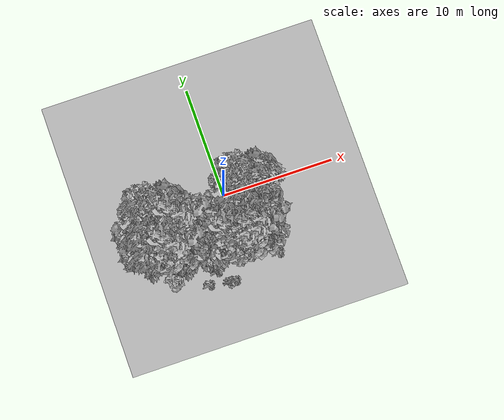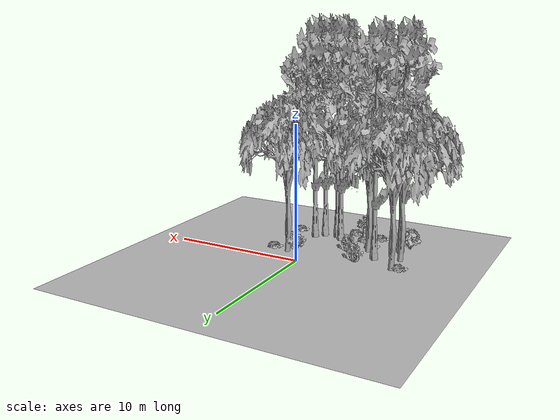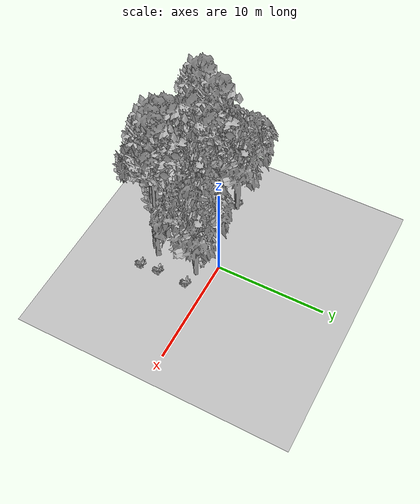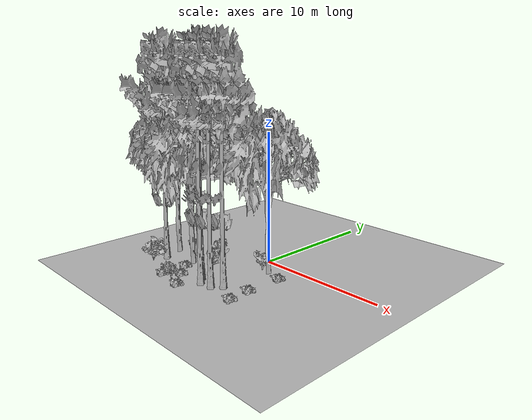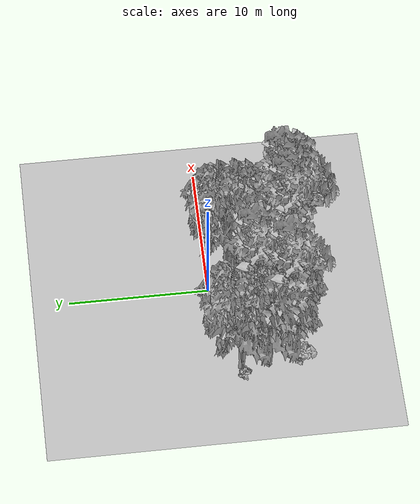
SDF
<sdf version="1.7">
 <world name="default">
  <model name="ground_plane">
   <static>1</static>
   <link name="link">
    <collision name="collision">
     <pose>-50 0 0 0 -0 0</pose>
     <geometry><plane><normal>0 0 1</normal><size>80 80</size></plane></geometry>
     <surface><contact><ode><min_depth>0.01</min_depth><max_vel>0</max_vel></ode></contact></surface>
    </collision>
    <visual name="grass">
     <cast_shadows>0</cast_shadows>
     <geometry>
      <mesh>
       <scale>0.46714285714285714 0.46714285714285714 0.1</scale>
       <uri>file://grass_plane/meshes/grass_plane.dae</uri>
      </mesh>
     </geometry>
    </visual>
   </link>
  </model>
  <model name="Tree 17">
   <static>1</static>
   <pose>1.223079849353475 -5.488641896530517 0 1.57079 -0 0</pose>
   <link name="link">
    <collision name="collision">
     <geometry><mesh><scale>3.5 5 3.5</scale><uri>model://tree_9/meshes/tree_9.obj</uri></mesh></geometry>
    </collision>
    <visual name="visual">
     <geometry><mesh><scale>3.5 5 3.5</scale><uri>model://tree_9/meshes/tree_9.obj</uri></mesh></geometry>
    </visual>
   </link>
  </model>
  <model name="Tree 20">
   <static>1</static>
   <pose>1.419046243965191 -1.5328491475228816 0 1.57079 -0 0</pose>
   <link name="link">
    <collision name="collision">
     <geometry><mesh><scale>3.5 5 3.5</scale><uri>model://tree_2/meshes/tree_2.obj</uri></mesh></geometry>
    </collision>
    <visual name="visual">
     <geometry><mesh><scale>3.5 5 3.5</scale><uri>model://tree_2/meshes/tree_2.obj</uri></mesh></geometry>
    </visual>
   </link>
  </model>
  <model name="Tree 126">
   <static>1</static>
   <pose>0.6301328935770485 -6.1104386257004535 0 1.57079 -0 0</pose>
   <link name="link">
    <collision name="collision">
     <geometry><mesh><scale>3.5 5 3.5</scale><uri>model://tree_9/meshes/tree_9.obj</uri></mesh></geometry>
    </collision>
    <visual name="visual">
     <geometry><mesh><scale>3.5 5 3.5</scale><uri>model://tree_9/meshes/tree_9.obj</uri></mesh></geometry>
    </visual>
   </link>
  </model>
  <model name="Tree 170">
   <static>1</static>
   <pose>-6.743065675844512 -3.568576311176045 0 1.57079 -0 0</pose>
   <link name="link">
    <collision name="collision">
     <geometry><mesh><scale>3.5 5 3.5</scale><uri>model://tree_2/meshes/tree_2.obj</uri></mesh></geometry>
    </collision>
    <visual name="visual">
     <geometry><mesh><scale>3.5 5 3.5</scale><uri>model://tree_2/meshes/tree_2.obj</uri></mesh></geometry>
    </visual>
   </link>
  </model>
  <model name="Tree 268">
   <static>1</static>
   <pose>-4.817594065640193 -2.9688103342439973 0 1.57079 -0 0</pose>
   <link name="link">
    <collision name="collision">
     <geometry><mesh><scale>3.5 5 3.5</scale><uri>model://tree_9/meshes/tree_9.obj</uri></mesh></geometry>
    </collision>
    <visual name="visual">
     <geometry><mesh><scale>3.5 5 3.5</scale><uri>model://tree_9/meshes/tree_9.obj</uri></mesh></geometry>
    </visual>
   </link>
  </model>
  <model name="Tree 347">
   <static>1</static>
   <pose>-6.037712920178734 -5.166103465083481 0 1.57079 -0 0</pose>
   <link name="link">
    <collision name="collision">
     <geometry><mesh><scale>3.5 5 3.5</scale><uri>model://tree_9/meshes/tree_9.obj</uri></mesh></geometry>
    </collision>
    <visual name="visual">
     <geometry><mesh><scale>3.5 5 3.5</scale><uri>model://tree_9/meshes/tree_9.obj</uri></mesh></geometry>
    </visual>
   </link>
  </model>
  <model name="Tree 402">
   <static>1</static>
   <pose>-0.3649259754336853 -6.2037611747105075 0 1.57079 -0 0</pose>
   <link name="link">
    <collision name="collision">
     <geometry><mesh><scale>3.5 5 3.5</scale><uri>model://tree_9/meshes/tree_9.obj</uri></mesh></geometry>
    </collision>
    <visual name="visual">
     <geometry><mesh><scale>3.5 5 3.5</scale><uri>model://tree_9/meshes/tree_9.obj</uri></mesh></geometry>
    </visual>
   </link>
  </model>
  <model name="Tree 564">
   <static>1</static>
   <pose>-3.9157537829677267 -4.309455536533875 0 1.57079 -0 0</pose>
   <link name="link">
    <collision name="collision">
     <geometry><mesh><scale>3.5 5 3.5</scale><uri>model://tree_2/meshes/tree_2.obj</uri></mesh></geometry>
    </collision>
    <visual name="visual">
     <geometry><mesh><scale>3.5 5 3.5</scale><uri>model://tree_2/meshes/tree_2.obj</uri></mesh></geometry>
    </visual>
   </link>
  </model>
  <model name="Tree 591">
   <static>1</static>
   <pose>-0.8891058265135428 -5.708166657099831 0 1.57079 -0 0</pose>
   <link name="link">
    <collision name="collision">
     <geometry><mesh><scale>3.5 5 3.5</scale><uri>model://tree_9/meshes/tree_9.obj</uri></mesh></geometry>
    </collision>
    <visual name="visual">
     <geometry><mesh><scale>3.5 5 3.5</scale><uri>model://tree_9/meshes/tree_9.obj</uri></mesh></geometry>
    </visual>
   </link>
  </model>
  <model name="Tree 616">
   <static>1</static>
   <pose>-6.771572465186363 -1.6329785124877247 0 1.57079 -0 0</pose>
   <link name="link">
    <collision name="collision">
     <geometry><mesh><scale>3.5 5 3.5</scale><uri>model://tree_2/meshes/tree_2.obj</uri></mesh></geometry>
    </collision>
    <visual name="visual">
     <geometry><mesh><scale>3.5 5 3.5</scale><uri>model://tree_2/meshes/tree_2.obj</uri></mesh></geometry>
    </visual>
   </link>
  </model>
  <model name="Bush 7">
   <static>1</static>
   <pose>-3.768558721003437 -7.127130313307006 0 1.57079 -0 0</pose>
   <link name="link">
    <collision name="collision">
     <geometry><mesh><scale>2 2 2</scale><uri>model://bush_2/meshes/bush_2.obj</uri></mesh></geometry>
     <surface><contact><collide_without_contact>false</collide_without_contact></contact></surface>
    </collision>
    <visual name="visual">
     <geometry><mesh><scale>2 2 2</scale><uri>model://bush_2/meshes/bush_2.obj</uri></mesh></geometry>
    </visual>
   </link>
  </model>
  <model name="Bush 31">
   <static>1</static>
   <pose>2.772606167524188 -4.642467874745165 0 1.57079 -0 0</pose>
   <link name="link">
    <collision name="collision">
     <geometry><mesh><scale>2 2 2</scale><uri>model://bush_2/meshes/bush_2.obj</uri></mesh></geometry>
     <surface><contact><collide_without_contact>false</collide_without_contact></contact></surface>
    </collision>
    <visual name="visual">
     <geometry><mesh><scale>2 2 2</scale><uri>model://bush_2/meshes/bush_2.obj</uri></mesh></geometry>
    </visual>
   </link>
  </model>
  <model name="Bush 51">
   <static>1</static>
   <pose>-2.5953839156386493 -3.4142460398864927 0 1.57079 -0 0</pose>
   <link name="link">
    <collision name="collision">
     <geometry><mesh><scale>2 2 2</scale><uri>model://bush_4/meshes/bush_4.obj</uri></mesh></geometry>
     <surface><contact><collide_without_contact>false</collide_without_contact></contact></surface>
    </collision>
    <visual name="visual">
     <geometry><mesh><scale>2 2 2</scale><uri>model://bush_4/meshes/bush_4.obj</uri></mesh></geometry>
    </visual>
   </link>
  </model>
  <model name="Bush 66">
   <static>1</static>
   <pose>0.7508850171583816 -1.3856845603862524 0 1.57079 -0 0</pose>
   <link name="link">
    <collision name="collision">
     <geometry><mesh><scale>2 2 2</scale><uri>model://bush_0/meshes/bush_0.obj</uri></mesh></geometry>
     <surface><contact><collide_without_contact>false</collide_without_contact></contact></surface>
    </collision>
    <visual name="visual">
     <geometry><mesh><scale>2 2 2</scale><uri>model://bush_0/meshes/bush_0.obj</uri></mesh></geometry>
    </visual>
   </link>
  </model>
  <model name="Bush 116">
   <static>1</static>
   <pose>-6.485390498793457 -6.133053727947541 0 1.57079 -0 0</pose>
   <link name="link">
    <collision name="collision">
     <geometry><mesh><scale>2 2 2</scale><uri>model://bush_1/meshes/bush_1.obj</uri></mesh></geometry>
     <surface><contact><collide_without_contact>false</collide_without_contact></contact></surface>
    </collision>
    <visual name="visual">
     <geometry><mesh><scale>2 2 2</scale><uri>model://bush_1/meshes/bush_1.obj</uri></mesh></geometry>
    </visual>
   </link>
  </model>
  <model name="Bush 147">
   <static>1</static>
   <pose>-2.7498840559678754 -6.233007477443671 0 1.57079 -0 0</pose>
   <link name="link">
    <collision name="collision">
     <geometry><mesh><scale>2 2 2</scale><uri>model://bush_2/meshes/bush_2.obj</uri></mesh></geometry>
     <surface><contact><collide_without_contact>false</collide_without_contact></contact></surface>
    </collision>
    <visual name="visual">
     <geometry><mesh><scale>2 2 2</scale><uri>model://bush_2/meshes/bush_2.obj</uri></mesh></geometry>
    </visual>
   </link>
  </model>
  <model name="Bush 228">
   <static>1</static>
   <pose>-1.5239027334360316 -7.4724134139029275 0 1.57079 -0 0</pose>
   <link name="link">
    <collision name="collision">
     <geometry><mesh><scale>2 2 2</scale><uri>model://bush_2/meshes/bush_2.obj</uri></mesh></geometry>
     <surface><contact><collide_without_contact>false</collide_without_contact></contact></surface>
    </collision>
    <visual name="visual">
     <geometry><mesh><scale>2 2 2</scale><uri>model://bush_2/meshes/bush_2.obj</uri></mesh></geometry>
    </visual>
   </link>
  </model>
  <model name="Bush 244">
   <static>1</static>
   <pose>2.806060137091613 -1.8588968941622 0 1.57079 -0 0</pose>
   <link name="link">
    <collision name="collision">
     <geometry><mesh><scale>2 2 2</scale><uri>model://bush_2/meshes/bush_2.obj</uri></mesh></geometry>
     <surface><contact><collide_without_contact>false</collide_without_contact></contact></surface>
    </collision>
    <visual name="visual">
     <geometry><mesh><scale>2 2 2</scale><uri>model://bush_2/meshes/bush_2.obj</uri></mesh></geometry>
    </visual>
   </link>
  </model>
  <model name="Bush 456">
   <static>1</static>
   <pose>-2.067196356321695 -7.454316030309499 0 1.57079 -0 0</pose>
   <link name="link">
    <collision name="collision">
     <geometry><mesh><scale>2 2 2</scale><uri>model://bush_5/meshes/bush_5.obj</uri></mesh></geometry>
     <surface><contact><collide_without_contact>false</collide_without_contact></contact></surface>
    </collision>
    <visual name="visual">
     <geometry><mesh><scale>2 2 2</scale><uri>model://bush_5/meshes/bush_5.obj</uri></mesh></geometry>
    </visual>
   </link>
  </model>
  <model name="Bush 459">
   <static>1</static>
   <pose>-7.160462276757212 -1.8097279807787885 0 1.57079 -0 0</pose>
   <link name="link">
    <collision name="collision">
     <geometry><mesh><scale>2 2 2</scale><uri>model://bush_2/meshes/bush_2.obj</uri></mesh></geometry>
     <surface><contact><collide_without_contact>false</collide_without_contact></contact></surface>
    </collision>
    <visual name="visual">
     <geometry><mesh><scale>2 2 2</scale><uri>model://bush_2/meshes/bush_2.obj</uri></mesh></geometry>
    </visual>
   </link>
  </model>
  <model name="Bush 508">
   <static>1</static>
   <pose>-3.7633480725568873 -1.8108588136673305 0 1.57079 -0 0</pose>
   <link name="link">
    <collision name="collision">
     <geometry><mesh><scale>2 2 2</scale><uri>model://bush_4/meshes/bush_4.obj</uri></mesh></geometry>
     <surface><contact><collide_without_contact>false</collide_without_contact></contact></surface>
    </collision>
    <visual name="visual">
     <geometry><mesh><scale>2 2 2</scale><uri>model://bush_4/meshes/bush_4.obj</uri></mesh></geometry>
    </visual>
   </link>
  </model>
  <model name="Bush 512">
   <static>1</static>
   <pose>-3.749681946493176 -5.134795168757009 0 1.57079 -0 0</pose>
   <link name="link">
    <collision name="collision">
     <geometry><mesh><scale>2 2 2</scale><uri>model://bush_2/meshes/bush_2.obj</uri></mesh></geometry>
     <surface><contact><collide_without_contact>false</collide_without_contact></contact></surface>
    </collision>
    <visual name="visual">
     <geometry><mesh><scale>2 2 2</scale><uri>model://bush_2/meshes/bush_2.obj</uri></mesh></geometry>
    </visual>
   </link>
  </model>
  <model name="Bush 612">
   <static>1</static>
   <pose>2.881655159087572 -6.362831669969424 0 1.57079 -0 0</pose>
   <link name="link">
    <collision name="collision">
     <geometry><mesh><scale>2 2 2</scale><uri>model://bush_2/meshes/bush_2.obj</uri></mesh></geometry>
     <surface><contact><collide_without_contact>false</collide_without_contact></contact></surface>
    </collision>
    <visual name="visual">
     <geometry><mesh><scale>2 2 2</scale><uri>model://bush_2/meshes/bush_2.obj</uri></mesh></geometry>
    </visual>
   </link>
  </model>
 </world>
</sdf>
